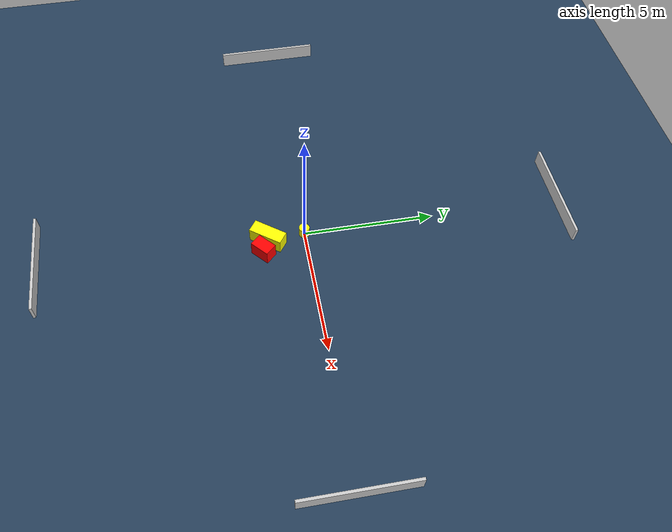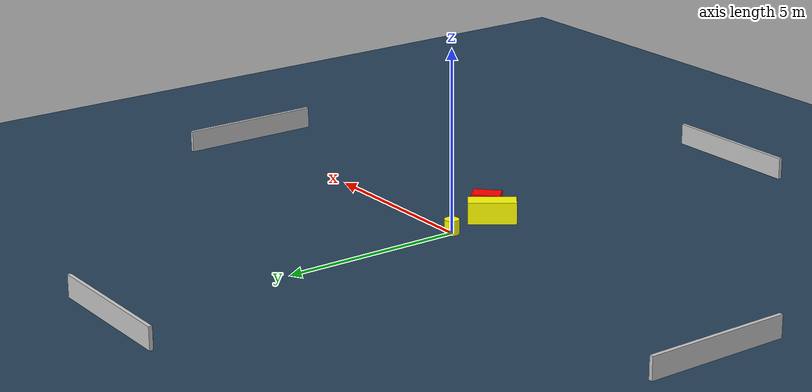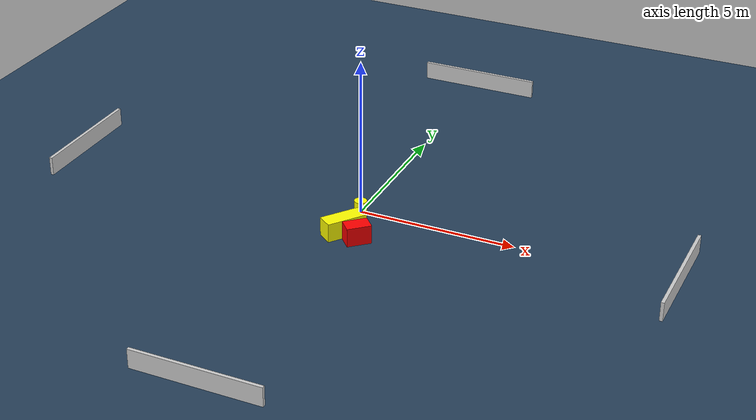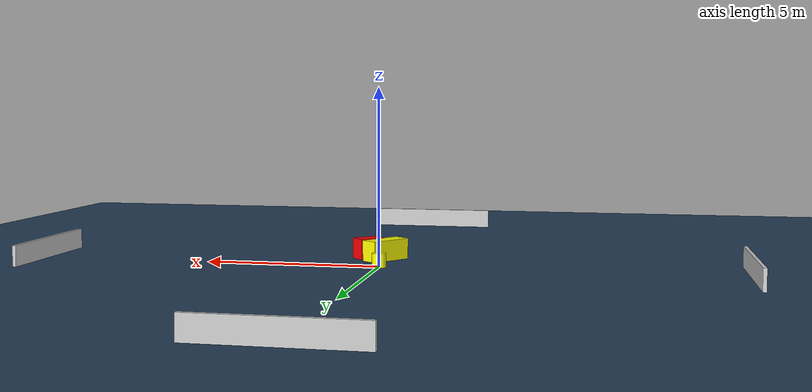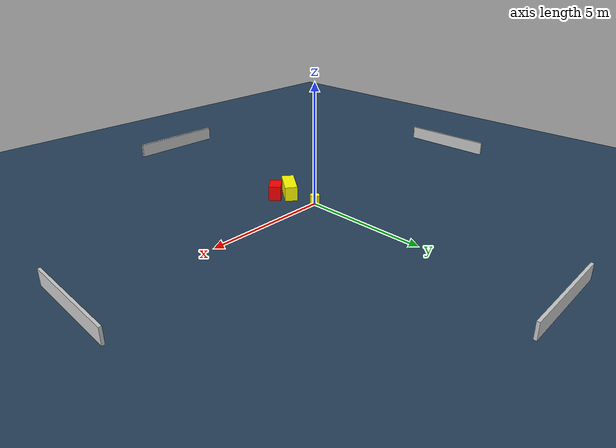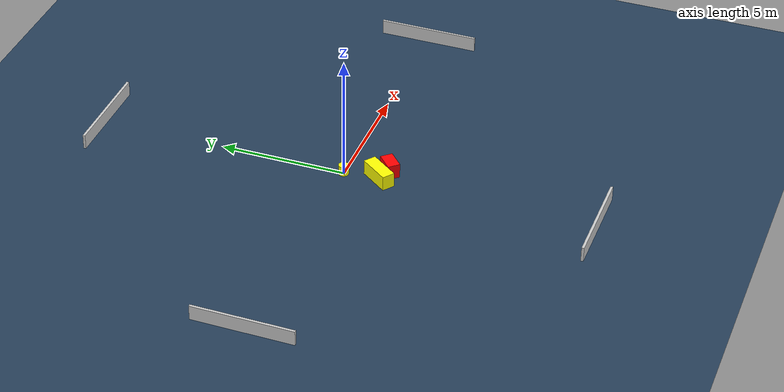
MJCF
<?xml version="1.0" ?>
<mujoco model="generated_environment">
  <option timestep="0.01" integrator="RK4" cone="elliptic"/>
  <default>
    <geom density="1"/>
  </default>
  <asset>
    <texture builtin="gradient" height="3072" name="skybox" rgb1="0.3 0.5 0.7" rgb2="0 0 0" type="skybox" width="512"/>
    <texture builtin="checker" height="300" name="groundplane" rgb1="0.2 0.3 0.4" rgb2="0.1 0.2 0.3" type="2d" width="300"/>
    <material name="groundplane" reflectance="0.2" texrepeat="5 5" texture="groundplane"/>
  </asset>
  <worldbody>
    <light dir="0 0 -1" directional="true" pos="0 0 1.5"/>
    <geom condim="3" friction="0.5 0.005 0.001" material="groundplane" name="floor" pos="0 0 0" size="0 0 0.05" type="plane"/>
    <body name="walls">
      <geom name="wall_1" condim="4" pos="-10.0 0.0 0.3" rgba="0.800000011920929 0.800000011920929 0.800000011920929 1.0" size="0.05 2.0 0.3" type="box"/>
      <geom name="wall_2" condim="4" pos="10.0 0.0 0.3" rgba="0.800000011920929 0.800000011920929 0.800000011920929 1.0" size="0.05 2.0 0.3" type="box"/>
      <geom name="wall_3" condim="4" pos="0.0 -10.0 0.3" rgba="0.800000011920929 0.800000011920929 0.800000011920929 1.0" size="2.0 0.05 0.3" type="box"/>
      <geom name="wall_4" condim="4" pos="0.0 10.0 0.3" rgba="0.800000011920929 0.800000011920929 0.800000011920929 1.0" size="2.0 0.05 0.3" type="box"/>
    </body>
    <body name="robot">
      <joint name="joint_x" type="slide" pos="0 0 0" axis="1 0 0"/>
      <joint name="joint_y" type="slide" pos="0 0 0" axis="0 1 0"/>
      <geom name="robot" type="cylinder" pos="0.0 0.0 0.2" size="0.2 0.2 0.0" mass="5.0" friction="1.0 0.005 0.0001" condim="4" rgba="1.0 1.0 0.0 1.0"/>
    </body>
    <body name="obstacle_1_movable">
      <geom name="obstacle_1_movable" condim="4" pos="0.09216879089615573 -1.3989962069443724 0.3" euler="0 0 233.47670173052623" friction="0.0 0.005 0.001" rgba="1.0 1.0 0.0 1.0" size="0.6521719058803801 0.257054086787605 0.3" type="box" mass="0.1"/>
      <joint type="free"/>
    </body>
    <body name="obstacle_2_static">
      <geom name="obstacle_2_static" condim="4" pos="0.6493458332739811 -1.6462514637419916 0.3" euler="0 0 132.29279468550493" friction="0.0 0.005 0.001" rgba="1.0 0.0 0.0 1.0" size="0.24687808587761126 0.3846008251500559 0.3" type="box"/>
    </body>
  </worldbody>
  <actuator>
    <motor name="actuator_x" joint="joint_x" gear="1" ctrlrange="-1 1"/>
    <motor name="actuator_y" joint="joint_y" gear="1" ctrlrange="-1 1"/>
  </actuator>
</mujoco>
